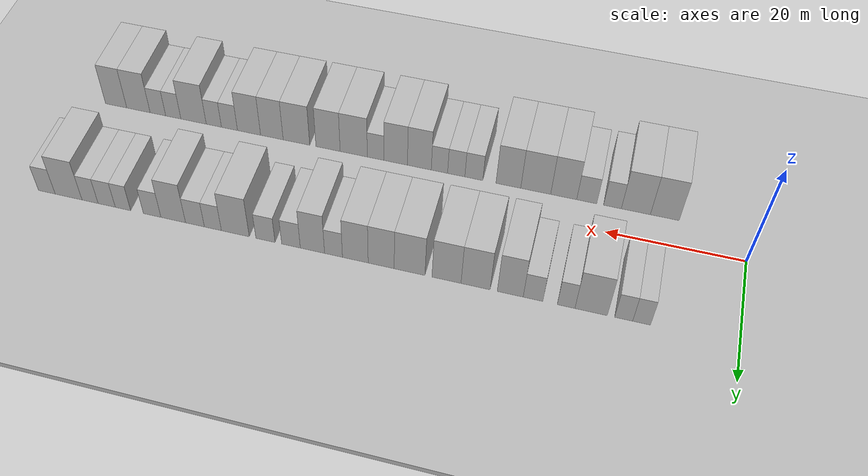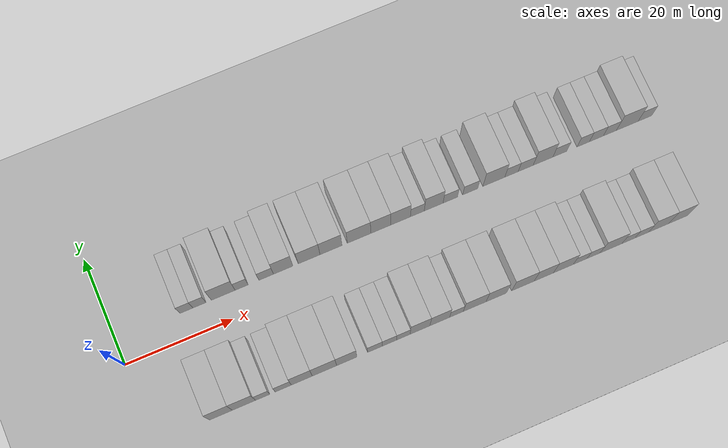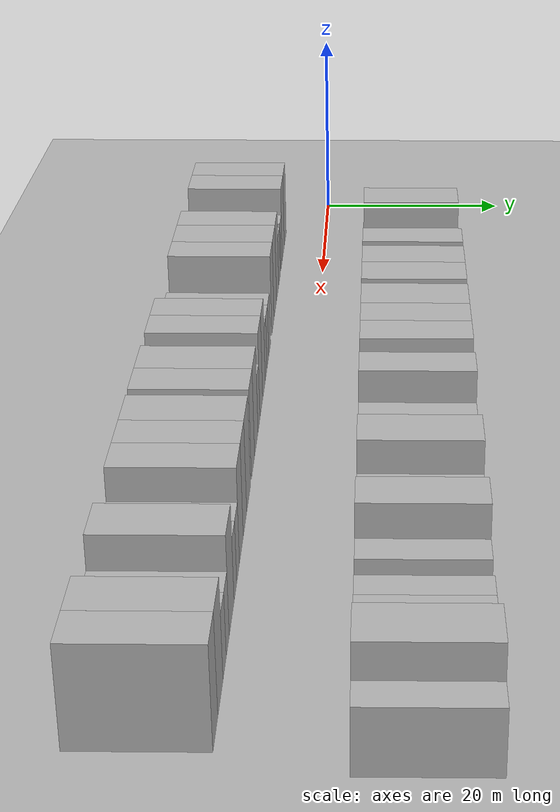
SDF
<sdf version="1.6">
 <world name="default">
  <include><name>ground_plane_1</name><uri>model://HANNAS_ground_plane</uri></include>
  <include>
   <name>ground_plane_2</name>
   <uri>model://HANNAS_ground_plane</uri>
   <pose>100 0 0  0 0 0</pose>
  </include>
  <model name="building_1">
   <static>1</static>
   <pose>13.2009 9.5000 0 0.000000 0.000000 1.570796</pose>
   <link name="link">
    <pose>0 0 3.00 0 0 0</pose>
    <collision name="collision"><geometry><box><size>10.0000 2.4018 6.0000</size></box></geometry></collision>
    <visual name="visual">
     <cast_shadows>0</cast_shadows>
     <geometry><box><size>10.0000 2.4018 6.0000</size></box></geometry>
     <material>
      <script>
       <uri>model://HANNAS_wall/materials/scripts</uri>
       <uri>model://HANNAS_wall/materials/textures</uri>
       <name>vrc/HANNAS_wall</name>
      </script>
     </material>
    </visual>
   </link>
  </model>
  <model name="building_2">
   <static>1</static>
   <pose>15.6214 9.5000 0 0.000000 0.000000 1.570796</pose>
   <link name="link">
    <pose>0 0 3.00 0 0 0</pose>
    <collision name="collision"><geometry><box><size>10.0000 2.4392 6.0000</size></box></geometry></collision>
    <visual name="visual">
     <cast_shadows>0</cast_shadows>
     <geometry><box><size>10.0000 2.4392 6.0000</size></box></geometry>
     <material>
      <script>
       <uri>model://HANNAS_wall/materials/scripts</uri>
       <uri>model://HANNAS_wall/materials/textures</uri>
       <name>vrc/HANNAS_wall</name>
      </script>
     </material>
    </visual>
   </link>
  </model>
  <model name="building_3">
   <static>1</static>
   <pose>20.0575 9.5000 0 0.000000 0.000000 1.570796</pose>
   <link name="link">
    <pose>0 0 4.50 0 0 0</pose>
    <collision name="collision"><geometry><box><size>10.0000 4.4329 9.0000</size></box></geometry></collision>
    <visual name="visual">
     <cast_shadows>0</cast_shadows>
     <geometry><box><size>10.0000 4.4329 9.0000</size></box></geometry>
     <material>
      <script>
       <uri>model://HANNAS_wall/materials/scripts</uri>
       <uri>model://HANNAS_wall/materials/textures</uri>
       <name>vrc/HANNAS_wall</name>
      </script>
     </material>
    </visual>
   </link>
  </model>
  <model name="building_4">
   <static>1</static>
   <pose>23.4861 9.5000 0 0.000000 0.000000 1.570796</pose>
   <link name="link">
    <pose>0 0 3.00 0 0 0</pose>
    <collision name="collision"><geometry><box><size>10.0000 2.4244 6.0000</size></box></geometry></collision>
    <visual name="visual">
     <cast_shadows>0</cast_shadows>
     <geometry><box><size>10.0000 2.4244 6.0000</size></box></geometry>
     <material>
      <script>
       <uri>model://HANNAS_wall/materials/scripts</uri>
       <uri>model://HANNAS_wall/materials/textures</uri>
       <name>vrc/HANNAS_wall</name>
      </script>
     </material>
    </visual>
   </link>
  </model>
  <model name="building_5">
   <static>1</static>
   <pose>28.0650 9.5000 0 0.000000 0.000000 1.570796</pose>
   <link name="link">
    <pose>0 0 3.00 0 0 0</pose>
    <collision name="collision"><geometry><box><size>10.0000 2.7334 6.0000</size></box></geometry></collision>
    <visual name="visual">
     <cast_shadows>0</cast_shadows>
     <geometry><box><size>10.0000 2.7334 6.0000</size></box></geometry>
     <material>
      <script>
       <uri>model://HANNAS_wall/materials/scripts</uri>
       <uri>model://HANNAS_wall/materials/textures</uri>
       <name>vrc/HANNAS_wall</name>
      </script>
     </material>
    </visual>
   </link>
  </model>
  <model name="building_6">
   <static>1</static>
   <pose>31.2534 9.5000 0 0.000000 0.000000 1.570796</pose>
   <link name="link">
    <pose>0 0 4.50 0 0 0</pose>
    <collision name="collision"><geometry><box><size>10.0000 3.6433 9.0000</size></box></geometry></collision>
    <visual name="visual">
     <cast_shadows>0</cast_shadows>
     <geometry><box><size>10.0000 3.6433 9.0000</size></box></geometry>
     <material>
      <script>
       <uri>model://HANNAS_wall/materials/scripts</uri>
       <uri>model://HANNAS_wall/materials/textures</uri>
       <name>vrc/HANNAS_wall</name>
      </script>
     </material>
    </visual>
   </link>
  </model>
  <model name="building_7">
   <static>1</static>
   <pose>36.1332 9.5000 0 0.000000 0.000000 1.570796</pose>
   <link name="link">
    <pose>0 0 4.50 0 0 0</pose>
    <collision name="collision"><geometry><box><size>10.0000 4.1164 9.0000</size></box></geometry></collision>
    <visual name="visual">
     <cast_shadows>0</cast_shadows>
     <geometry><box><size>10.0000 4.1164 9.0000</size></box></geometry>
     <material>
      <script>
       <uri>model://HANNAS_wall/materials/scripts</uri>
       <uri>model://HANNAS_wall/materials/textures</uri>
       <name>vrc/HANNAS_wall</name>
      </script>
     </material>
    </visual>
   </link>
  </model>
  <model name="building_8">
   <static>1</static>
   <pose>40.2678 9.5000 0 0.000000 0.000000 1.570796</pose>
   <link name="link">
    <pose>0 0 4.50 0 0 0</pose>
    <collision name="collision"><geometry><box><size>10.0000 4.1528 9.0000</size></box></geometry></collision>
    <visual name="visual">
     <cast_shadows>0</cast_shadows>
     <geometry><box><size>10.0000 4.1528 9.0000</size></box></geometry>
     <material>
      <script>
       <uri>model://HANNAS_wall/materials/scripts</uri>
       <uri>model://HANNAS_wall/materials/textures</uri>
       <name>vrc/HANNAS_wall</name>
      </script>
     </material>
    </visual>
   </link>
  </model>
  <model name="building_9">
   <static>1</static>
   <pose>45.5697 9.5000 0 0.000000 0.000000 1.570796</pose>
   <link name="link">
    <pose>0 0 4.50 0 0 0</pose>
    <collision name="collision"><geometry><box><size>10.0000 4.4511 9.0000</size></box></geometry></collision>
    <visual name="visual">
     <cast_shadows>0</cast_shadows>
     <geometry><box><size>10.0000 4.4511 9.0000</size></box></geometry>
     <material>
      <script>
       <uri>model://HANNAS_wall/materials/scripts</uri>
       <uri>model://HANNAS_wall/materials/textures</uri>
       <name>vrc/HANNAS_wall</name>
      </script>
     </material>
    </visual>
   </link>
  </model>
  <model name="building_10">
   <static>1</static>
   <pose>49.6884 9.5000 0 0.000000 0.000000 1.570796</pose>
   <link name="link">
    <pose>0 0 4.50 0 0 0</pose>
    <collision name="collision"><geometry><box><size>10.0000 3.7864 9.0000</size></box></geometry></collision>
    <visual name="visual">
     <cast_shadows>0</cast_shadows>
     <geometry><box><size>10.0000 3.7864 9.0000</size></box></geometry>
     <material>
      <script>
       <uri>model://HANNAS_wall/materials/scripts</uri>
       <uri>model://HANNAS_wall/materials/textures</uri>
       <name>vrc/HANNAS_wall</name>
      </script>
     </material>
    </visual>
   </link>
  </model>
  <model name="building_11">
   <static>1</static>
   <pose>53.4665 9.5000 0 0.000000 0.000000 1.570796</pose>
   <link name="link">
    <pose>0 0 4.50 0 0 0</pose>
    <collision name="collision"><geometry><box><size>10.0000 3.7699 9.0000</size></box></geometry></collision>
    <visual name="visual">
     <cast_shadows>0</cast_shadows>
     <geometry><box><size>10.0000 3.7699 9.0000</size></box></geometry>
     <material>
      <script>
       <uri>model://HANNAS_wall/materials/scripts</uri>
       <uri>model://HANNAS_wall/materials/textures</uri>
       <name>vrc/HANNAS_wall</name>
      </script>
     </material>
    </visual>
   </link>
  </model>
  <model name="building_12">
   <static>1</static>
   <pose>56.6749 9.5000 0 0.000000 0.000000 1.570796</pose>
   <link name="link">
    <pose>0 0 3.00 0 0 0</pose>
    <collision name="collision"><geometry><box><size>10.0000 2.6469 6.0000</size></box></geometry></collision>
    <visual name="visual">
     <cast_shadows>0</cast_shadows>
     <geometry><box><size>10.0000 2.6469 6.0000</size></box></geometry>
     <material>
      <script>
       <uri>model://HANNAS_wall/materials/scripts</uri>
       <uri>model://HANNAS_wall/materials/textures</uri>
       <name>vrc/HANNAS_wall</name>
      </script>
     </material>
    </visual>
   </link>
  </model>
  <model name="building_13">
   <static>1</static>
   <pose>59.8021 9.5000 0 0.000000 0.000000 1.570796</pose>
   <link name="link">
    <pose>0 0 4.50 0 0 0</pose>
    <collision name="collision"><geometry><box><size>10.0000 3.6074 9.0000</size></box></geometry></collision>
    <visual name="visual">
     <cast_shadows>0</cast_shadows>
     <geometry><box><size>10.0000 3.6074 9.0000</size></box></geometry>
     <material>
      <script>
       <uri>model://HANNAS_wall/materials/scripts</uri>
       <uri>model://HANNAS_wall/materials/textures</uri>
       <name>vrc/HANNAS_wall</name>
      </script>
     </material>
    </visual>
   </link>
  </model>
  <model name="building_14">
   <static>1</static>
   <pose>62.9990 9.5000 0 0.000000 0.000000 1.570796</pose>
   <link name="link">
    <pose>0 0 3.00 0 0 0</pose>
    <collision name="collision"><geometry><box><size>10.0000 2.7863 6.0000</size></box></geometry></collision>
    <visual name="visual">
     <cast_shadows>0</cast_shadows>
     <geometry><box><size>10.0000 2.7863 6.0000</size></box></geometry>
     <material>
      <script>
       <uri>model://HANNAS_wall/materials/scripts</uri>
       <uri>model://HANNAS_wall/materials/textures</uri>
       <name>vrc/HANNAS_wall</name>
      </script>
     </material>
    </visual>
   </link>
  </model>
  <model name="building_15">
   <static>1</static>
   <pose>66.8401 9.5000 0 0.000000 0.000000 1.570796</pose>
   <link name="link">
    <pose>0 0 3.00 0 0 0</pose>
    <collision name="collision"><geometry><box><size>10.0000 2.8960 6.0000</size></box></geometry></collision>
    <visual name="visual">
     <cast_shadows>0</cast_shadows>
     <geometry><box><size>10.0000 2.8960 6.0000</size></box></geometry>
     <material>
      <script>
       <uri>model://HANNAS_wall/materials/scripts</uri>
       <uri>model://HANNAS_wall/materials/textures</uri>
       <name>vrc/HANNAS_wall</name>
      </script>
     </material>
    </visual>
   </link>
  </model>
  <model name="building_16">
   <static>1</static>
   <pose>71.4126 9.5000 0 0.000000 0.000000 1.570796</pose>
   <link name="link">
    <pose>0 0 4.50 0 0 0</pose>
    <collision name="collision"><geometry><box><size>10.0000 4.2489 9.0000</size></box></geometry></collision>
    <visual name="visual">
     <cast_shadows>0</cast_shadows>
     <geometry><box><size>10.0000 4.2489 9.0000</size></box></geometry>
     <material>
      <script>
       <uri>model://HANNAS_wall/materials/scripts</uri>
       <uri>model://HANNAS_wall/materials/textures</uri>
       <name>vrc/HANNAS_wall</name>
      </script>
     </material>
    </visual>
   </link>
  </model>
  <model name="building_17">
   <static>1</static>
   <pose>74.8411 9.5000 0 0.000000 0.000000 1.570796</pose>
   <link name="link">
    <pose>0 0 3.00 0 0 0</pose>
    <collision name="collision"><geometry><box><size>10.0000 2.6082 6.0000</size></box></geometry></collision>
    <visual name="visual">
     <cast_shadows>0</cast_shadows>
     <geometry><box><size>10.0000 2.6082 6.0000</size></box></geometry>
     <material>
      <script>
       <uri>model://HANNAS_wall/materials/scripts</uri>
       <uri>model://HANNAS_wall/materials/textures</uri>
       <name>vrc/HANNAS_wall</name>
      </script>
     </material>
    </visual>
   </link>
  </model>
  <model name="building_18">
   <static>1</static>
   <pose>77.6003 9.5000 0 0.000000 0.000000 1.570796</pose>
   <link name="link">
    <pose>0 0 3.00 0 0 0</pose>
    <collision name="collision"><geometry><box><size>10.0000 2.9102 6.0000</size></box></geometry></collision>
    <visual name="visual">
     <cast_shadows>0</cast_shadows>
     <geometry><box><size>10.0000 2.9102 6.0000</size></box></geometry>
     <material>
      <script>
       <uri>model://HANNAS_wall/materials/scripts</uri>
       <uri>model://HANNAS_wall/materials/textures</uri>
       <name>vrc/HANNAS_wall</name>
      </script>
     </material>
    </visual>
   </link>
  </model>
  <model name="building_19">
   <static>1</static>
   <pose>80.9687 9.5000 0 0.000000 0.000000 1.570796</pose>
   <link name="link">
    <pose>0 0 4.50 0 0 0</pose>
    <collision name="collision"><geometry><box><size>10.0000 3.8265 9.0000</size></box></geometry></collision>
    <visual name="visual">
     <cast_shadows>0</cast_shadows>
     <geometry><box><size>10.0000 3.8265 9.0000</size></box></geometry>
     <material>
      <script>
       <uri>model://HANNAS_wall/materials/scripts</uri>
       <uri>model://HANNAS_wall/materials/textures</uri>
       <name>vrc/HANNAS_wall</name>
      </script>
     </material>
    </visual>
   </link>
  </model>
  <model name="building_20">
   <static>1</static>
   <pose>84.2531 9.5000 0 0.000000 0.000000 1.570796</pose>
   <link name="link">
    <pose>0 0 3.00 0 0 0</pose>
    <collision name="collision"><geometry><box><size>10.0000 2.7424 6.0000</size></box></geometry></collision>
    <visual name="visual">
     <cast_shadows>0</cast_shadows>
     <geometry><box><size>10.0000 2.7424 6.0000</size></box></geometry>
     <material>
      <script>
       <uri>model://HANNAS_wall/materials/scripts</uri>
       <uri>model://HANNAS_wall/materials/textures</uri>
       <name>vrc/HANNAS_wall</name>
      </script>
     </material>
    </visual>
   </link>
  </model>
  <model name="building_21">
   <static>1</static>
   <pose>88.8378 9.5000 0 0.000000 0.000000 1.570796</pose>
   <link name="link">
    <pose>0 0 3.00 0 0 0</pose>
    <collision name="collision"><geometry><box><size>10.0000 2.4270 6.0000</size></box></geometry></collision>
    <visual name="visual">
     <cast_shadows>0</cast_shadows>
     <geometry><box><size>10.0000 2.4270 6.0000</size></box></geometry>
     <material>
      <script>
       <uri>model://HANNAS_wall/materials/scripts</uri>
       <uri>model://HANNAS_wall/materials/textures</uri>
       <name>vrc/HANNAS_wall</name>
      </script>
     </material>
    </visual>
   </link>
  </model>
  <model name="building_22">
   <static>1</static>
   <pose>91.4158 9.5000 0 0.000000 0.000000 1.570796</pose>
   <link name="link">
    <pose>0 0 3.00 0 0 0</pose>
    <collision name="collision"><geometry><box><size>10.0000 2.7290 6.0000</size></box></geometry></collision>
    <visual name="visual">
     <cast_shadows>0</cast_shadows>
     <geometry><box><size>10.0000 2.7290 6.0000</size></box></geometry>
     <material>
      <script>
       <uri>model://HANNAS_wall/materials/scripts</uri>
       <uri>model://HANNAS_wall/materials/textures</uri>
       <name>vrc/HANNAS_wall</name>
      </script>
     </material>
    </visual>
   </link>
  </model>
  <model name="building_23">
   <static>1</static>
   <pose>94.0646 9.5000 0 0.000000 0.000000 1.570796</pose>
   <link name="link">
    <pose>0 0 3.00 0 0 0</pose>
    <collision name="collision"><geometry><box><size>10.0000 2.5685 6.0000</size></box></geometry></collision>
    <visual name="visual">
     <cast_shadows>0</cast_shadows>
     <geometry><box><size>10.0000 2.5685 6.0000</size></box></geometry>
     <material>
      <script>
       <uri>model://HANNAS_wall/materials/scripts</uri>
       <uri>model://HANNAS_wall/materials/textures</uri>
       <name>vrc/HANNAS_wall</name>
      </script>
     </material>
    </visual>
   </link>
  </model>
  <model name="building_24">
   <static>1</static>
   <pose>97.5057 9.5000 0 0.000000 0.000000 1.570796</pose>
   <link name="link">
    <pose>0 0 4.50 0 0 0</pose>
    <collision name="collision"><geometry><box><size>10.0000 4.3137 9.0000</size></box></geometry></collision>
    <visual name="visual">
     <cast_shadows>0</cast_shadows>
     <geometry><box><size>10.0000 4.3137 9.0000</size></box></geometry>
     <material>
      <script>
       <uri>model://HANNAS_wall/materials/scripts</uri>
       <uri>model://HANNAS_wall/materials/textures</uri>
       <name>vrc/HANNAS_wall</name>
      </script>
     </material>
    </visual>
   </link>
  </model>
  <model name="building_25">
   <static>1</static>
   <pose>101.0171 9.5000 0 0.000000 0.000000 1.570796</pose>
   <link name="link">
    <pose>0 0 3.00 0 0 0</pose>
    <collision name="collision"><geometry><box><size>10.0000 2.7090 6.0000</size></box></geometry></collision>
    <visual name="visual">
     <cast_shadows>0</cast_shadows>
     <geometry><box><size>10.0000 2.7090 6.0000</size></box></geometry>
     <material>
      <script>
       <uri>model://HANNAS_wall/materials/scripts</uri>
       <uri>model://HANNAS_wall/materials/textures</uri>
       <name>vrc/HANNAS_wall</name>
      </script>
     </material>
    </visual>
   </link>
  </model>
  <model name="building_49">
   <static>1</static>
   <pose>12.0807 -9.5000 0 0.000000 0.000000 1.570796</pose>
   <link name="link">
    <pose>0 0 4.50 0 0 0</pose>
    <collision name="collision"><geometry><box><size>10.0000 4.1614 9.0000</size></box></geometry></collision>
    <visual name="visual">
     <cast_shadows>0</cast_shadows>
     <geometry><box><size>10.0000 4.1614 9.0000</size></box></geometry>
     <material>
      <script>
       <uri>model://HANNAS_wall/materials/scripts</uri>
       <uri>model://HANNAS_wall/materials/textures</uri>
       <name>vrc/HANNAS_wall</name>
      </script>
     </material>
    </visual>
   </link>
  </model>
  <model name="building_50">
   <static>1</static>
   <pose>16.2794 -9.5000 0 0.000000 0.000000 1.570796</pose>
   <link name="link">
    <pose>0 0 4.50 0 0 0</pose>
    <collision name="collision"><geometry><box><size>10.0000 4.2360 9.0000</size></box></geometry></collision>
    <visual name="visual">
     <cast_shadows>0</cast_shadows>
     <geometry><box><size>10.0000 4.2360 9.0000</size></box></geometry>
     <material>
      <script>
       <uri>model://HANNAS_wall/materials/scripts</uri>
       <uri>model://HANNAS_wall/materials/textures</uri>
       <name>vrc/HANNAS_wall</name>
      </script>
     </material>
    </visual>
   </link>
  </model>
  <model name="building_51">
   <static>1</static>
   <pose>19.6999 -9.5000 0 0.000000 0.000000 1.570796</pose>
   <link name="link">
    <pose>0 0 3.00 0 0 0</pose>
    <collision name="collision"><geometry><box><size>10.0000 2.6049 6.0000</size></box></geometry></collision>
    <visual name="visual">
     <cast_shadows>0</cast_shadows>
     <geometry><box><size>10.0000 2.6049 6.0000</size></box></geometry>
     <material>
      <script>
       <uri>model://HANNAS_wall/materials/scripts</uri>
       <uri>model://HANNAS_wall/materials/textures</uri>
       <name>vrc/HANNAS_wall</name>
      </script>
     </material>
    </visual>
   </link>
  </model>
  <model name="building_52">
   <static>1</static>
   <pose>23.4866 -9.5000 0 0.000000 0.000000 1.570796</pose>
   <link name="link">
    <pose>0 0 3.00 0 0 0</pose>
    <collision name="collision"><geometry><box><size>10.0000 2.9686 6.0000</size></box></geometry></collision>
    <visual name="visual">
     <cast_shadows>0</cast_shadows>
     <geometry><box><size>10.0000 2.9686 6.0000</size></box></geometry>
     <material>
      <script>
       <uri>model://HANNAS_wall/materials/scripts</uri>
       <uri>model://HANNAS_wall/materials/textures</uri>
       <name>vrc/HANNAS_wall</name>
      </script>
     </material>
    </visual>
   </link>
  </model>
  <model name="building_53">
   <static>1</static>
   <pose>26.9066 -9.5000 0 0.000000 0.000000 1.570796</pose>
   <link name="link">
    <pose>0 0 4.50 0 0 0</pose>
    <collision name="collision"><geometry><box><size>10.0000 3.8714 9.0000</size></box></geometry></collision>
    <visual name="visual">
     <cast_shadows>0</cast_shadows>
     <geometry><box><size>10.0000 3.8714 9.0000</size></box></geometry>
     <material>
      <script>
       <uri>model://HANNAS_wall/materials/scripts</uri>
       <uri>model://HANNAS_wall/materials/textures</uri>
       <name>vrc/HANNAS_wall</name>
      </script>
     </material>
    </visual>
   </link>
  </model>
  <model name="building_54">
   <static>1</static>
   <pose>31.0897 -9.5000 0 0.000000 0.000000 1.570796</pose>
   <link name="link">
    <pose>0 0 4.50 0 0 0</pose>
    <collision name="collision"><geometry><box><size>10.0000 4.4949 9.0000</size></box></geometry></collision>
    <visual name="visual">
     <cast_shadows>0</cast_shadows>
     <geometry><box><size>10.0000 4.4949 9.0000</size></box></geometry>
     <material>
      <script>
       <uri>model://HANNAS_wall/materials/scripts</uri>
       <uri>model://HANNAS_wall/materials/textures</uri>
       <name>vrc/HANNAS_wall</name>
      </script>
     </material>
    </visual>
   </link>
  </model>
  <model name="building_55">
   <static>1</static>
   <pose>35.2125 -9.5000 0 0.000000 0.000000 1.570796</pose>
   <link name="link">
    <pose>0 0 4.50 0 0 0</pose>
    <collision name="collision"><geometry><box><size>10.0000 3.7507 9.0000</size></box></geometry></collision>
    <visual name="visual">
     <cast_shadows>0</cast_shadows>
     <geometry><box><size>10.0000 3.7507 9.0000</size></box></geometry>
     <material>
      <script>
       <uri>model://HANNAS_wall/materials/scripts</uri>
       <uri>model://HANNAS_wall/materials/textures</uri>
       <name>vrc/HANNAS_wall</name>
      </script>
     </material>
    </visual>
   </link>
  </model>
  <model name="building_56">
   <static>1</static>
   <pose>40.4596 -9.5000 0 0.000000 0.000000 1.570796</pose>
   <link name="link">
    <pose>0 0 3.00 0 0 0</pose>
    <collision name="collision"><geometry><box><size>10.0000 2.7436 6.0000</size></box></geometry></collision>
    <visual name="visual">
     <cast_shadows>0</cast_shadows>
     <geometry><box><size>10.0000 2.7436 6.0000</size></box></geometry>
     <material>
      <script>
       <uri>model://HANNAS_wall/materials/scripts</uri>
       <uri>model://HANNAS_wall/materials/textures</uri>
       <name>vrc/HANNAS_wall</name>
      </script>
     </material>
    </visual>
   </link>
  </model>
  <model name="building_57">
   <static>1</static>
   <pose>43.1601 -9.5000 0 0.000000 0.000000 1.570796</pose>
   <link name="link">
    <pose>0 0 3.00 0 0 0</pose>
    <collision name="collision"><geometry><box><size>10.0000 2.6574 6.0000</size></box></geometry></collision>
    <visual name="visual">
     <cast_shadows>0</cast_shadows>
     <geometry><box><size>10.0000 2.6574 6.0000</size></box></geometry>
     <material>
      <script>
       <uri>model://HANNAS_wall/materials/scripts</uri>
       <uri>model://HANNAS_wall/materials/textures</uri>
       <name>vrc/HANNAS_wall</name>
      </script>
     </material>
    </visual>
   </link>
  </model>
  <model name="building_58">
   <static>1</static>
   <pose>45.7511 -9.5000 0 0.000000 0.000000 1.570796</pose>
   <link name="link">
    <pose>0 0 3.00 0 0 0</pose>
    <collision name="collision"><geometry><box><size>10.0000 2.5245 6.0000</size></box></geometry></collision>
    <visual name="visual">
     <cast_shadows>0</cast_shadows>
     <geometry><box><size>10.0000 2.5245 6.0000</size></box></geometry>
     <material>
      <script>
       <uri>model://HANNAS_wall/materials/scripts</uri>
       <uri>model://HANNAS_wall/materials/textures</uri>
       <name>vrc/HANNAS_wall</name>
      </script>
     </material>
    </visual>
   </link>
  </model>
  <model name="building_59">
   <static>1</static>
   <pose>48.8729 -9.5000 0 0.000000 0.000000 1.570796</pose>
   <link name="link">
    <pose>0 0 4.50 0 0 0</pose>
    <collision name="collision"><geometry><box><size>10.0000 3.7191 9.0000</size></box></geometry></collision>
    <visual name="visual">
     <cast_shadows>0</cast_shadows>
     <geometry><box><size>10.0000 3.7191 9.0000</size></box></geometry>
     <material>
      <script>
       <uri>model://HANNAS_wall/materials/scripts</uri>
       <uri>model://HANNAS_wall/materials/textures</uri>
       <name>vrc/HANNAS_wall</name>
      </script>
     </material>
    </visual>
   </link>
  </model>
  <model name="building_60">
   <static>1</static>
   <pose>52.5866 -9.5000 0 0.000000 0.000000 1.570796</pose>
   <link name="link">
    <pose>0 0 4.50 0 0 0</pose>
    <collision name="collision"><geometry><box><size>10.0000 3.7082 9.0000</size></box></geometry></collision>
    <visual name="visual">
     <cast_shadows>0</cast_shadows>
     <geometry><box><size>10.0000 3.7082 9.0000</size></box></geometry>
     <material>
      <script>
       <uri>model://HANNAS_wall/materials/scripts</uri>
       <uri>model://HANNAS_wall/materials/textures</uri>
       <name>vrc/HANNAS_wall</name>
      </script>
     </material>
    </visual>
   </link>
  </model>
  <model name="building_61">
   <static>1</static>
   <pose>55.7286 -9.5000 0 0.000000 0.000000 1.570796</pose>
   <link name="link">
    <pose>0 0 3.00 0 0 0</pose>
    <collision name="collision"><geometry><box><size>10.0000 2.5757 6.0000</size></box></geometry></collision>
    <visual name="visual">
     <cast_shadows>0</cast_shadows>
     <geometry><box><size>10.0000 2.5757 6.0000</size></box></geometry>
     <material>
      <script>
       <uri>model://HANNAS_wall/materials/scripts</uri>
       <uri>model://HANNAS_wall/materials/textures</uri>
       <name>vrc/HANNAS_wall</name>
      </script>
     </material>
    </visual>
   </link>
  </model>
  <model name="building_62">
   <static>1</static>
   <pose>59.1694 -9.5000 0 0.000000 0.000000 1.570796</pose>
   <link name="link">
    <pose>0 0 4.50 0 0 0</pose>
    <collision name="collision"><geometry><box><size>10.0000 4.3059 9.0000</size></box></geometry></collision>
    <visual name="visual">
     <cast_shadows>0</cast_shadows>
     <geometry><box><size>10.0000 4.3059 9.0000</size></box></geometry>
     <material>
      <script>
       <uri>model://HANNAS_wall/materials/scripts</uri>
       <uri>model://HANNAS_wall/materials/textures</uri>
       <name>vrc/HANNAS_wall</name>
      </script>
     </material>
    </visual>
   </link>
  </model>
  <model name="building_63">
   <static>1</static>
   <pose>63.2558 -9.5000 0 0.000000 0.000000 1.570796</pose>
   <link name="link">
    <pose>0 0 4.50 0 0 0</pose>
    <collision name="collision"><geometry><box><size>10.0000 3.8670 9.0000</size></box></geometry></collision>
    <visual name="visual">
     <cast_shadows>0</cast_shadows>
     <geometry><box><size>10.0000 3.8670 9.0000</size></box></geometry>
     <material>
      <script>
       <uri>model://HANNAS_wall/materials/scripts</uri>
       <uri>model://HANNAS_wall/materials/textures</uri>
       <name>vrc/HANNAS_wall</name>
      </script>
     </material>
    </visual>
   </link>
  </model>
  <model name="building_64">
   <static>1</static>
   <pose>68.3326 -9.5000 0 0.000000 0.000000 1.570796</pose>
   <link name="link">
    <pose>0 0 4.50 0 0 0</pose>
    <collision name="collision"><geometry><box><size>10.0000 4.2867 9.0000</size></box></geometry></collision>
    <visual name="visual">
     <cast_shadows>0</cast_shadows>
     <geometry><box><size>10.0000 4.2867 9.0000</size></box></geometry>
     <material>
      <script>
       <uri>model://HANNAS_wall/materials/scripts</uri>
       <uri>model://HANNAS_wall/materials/textures</uri>
       <name>vrc/HANNAS_wall</name>
      </script>
     </material>
    </visual>
   </link>
  </model>
  <model name="building_65">
   <static>1</static>
   <pose>72.3126 -9.5000 0 0.000000 0.000000 1.570796</pose>
   <link name="link">
    <pose>0 0 4.50 0 0 0</pose>
    <collision name="collision"><geometry><box><size>10.0000 3.6733 9.0000</size></box></geometry></collision>
    <visual name="visual">
     <cast_shadows>0</cast_shadows>
     <geometry><box><size>10.0000 3.6733 9.0000</size></box></geometry>
     <material>
      <script>
       <uri>model://HANNAS_wall/materials/scripts</uri>
       <uri>model://HANNAS_wall/materials/textures</uri>
       <name>vrc/HANNAS_wall</name>
      </script>
     </material>
    </visual>
   </link>
  </model>
  <model name="building_66">
   <static>1</static>
   <pose>76.0422 -9.5000 0 0.000000 0.000000 1.570796</pose>
   <link name="link">
    <pose>0 0 4.50 0 0 0</pose>
    <collision name="collision"><geometry><box><size>10.0000 3.7859 9.0000</size></box></geometry></collision>
    <visual name="visual">
     <cast_shadows>0</cast_shadows>
     <geometry><box><size>10.0000 3.7859 9.0000</size></box></geometry>
     <material>
      <script>
       <uri>model://HANNAS_wall/materials/scripts</uri>
       <uri>model://HANNAS_wall/materials/textures</uri>
       <name>vrc/HANNAS_wall</name>
      </script>
     </material>
    </visual>
   </link>
  </model>
  <model name="building_67">
   <static>1</static>
   <pose>79.2590 -9.5000 0 0.000000 0.000000 1.570796</pose>
   <link name="link">
    <pose>0 0 3.00 0 0 0</pose>
    <collision name="collision"><geometry><box><size>10.0000 2.6479 6.0000</size></box></geometry></collision>
    <visual name="visual">
     <cast_shadows>0</cast_shadows>
     <geometry><box><size>10.0000 2.6479 6.0000</size></box></geometry>
     <material>
      <script>
       <uri>model://HANNAS_wall/materials/scripts</uri>
       <uri>model://HANNAS_wall/materials/textures</uri>
       <name>vrc/HANNAS_wall</name>
      </script>
     </material>
    </visual>
   </link>
  </model>
  <model name="building_68">
   <static>1</static>
   <pose>81.8412 -9.5000 0 0.000000 0.000000 1.570796</pose>
   <link name="link">
    <pose>0 0 3.00 0 0 0</pose>
    <collision name="collision"><geometry><box><size>10.0000 2.5165 6.0000</size></box></geometry></collision>
    <visual name="visual">
     <cast_shadows>0</cast_shadows>
     <geometry><box><size>10.0000 2.5165 6.0000</size></box></geometry>
     <material>
      <script>
       <uri>model://HANNAS_wall/materials/scripts</uri>
       <uri>model://HANNAS_wall/materials/textures</uri>
       <name>vrc/HANNAS_wall</name>
      </script>
     </material>
    </visual>
   </link>
  </model>
  <model name="building_69">
   <static>1</static>
   <pose>85.2153 -9.5000 0 0.000000 0.000000 1.570796</pose>
   <link name="link">
    <pose>0 0 4.50 0 0 0</pose>
    <collision name="collision"><geometry><box><size>10.0000 4.2315 9.0000</size></box></geometry></collision>
    <visual name="visual">
     <cast_shadows>0</cast_shadows>
     <geometry><box><size>10.0000 4.2315 9.0000</size></box></geometry>
     <material>
      <script>
       <uri>model://HANNAS_wall/materials/scripts</uri>
       <uri>model://HANNAS_wall/materials/textures</uri>
       <name>vrc/HANNAS_wall</name>
      </script>
     </material>
    </visual>
   </link>
  </model>
  <model name="building_70">
   <static>1</static>
   <pose>88.6059 -9.5000 0 0.000000 0.000000 1.570796</pose>
   <link name="link">
    <pose>0 0 3.00 0 0 0</pose>
    <collision name="collision"><geometry><box><size>10.0000 2.5498 6.0000</size></box></geometry></collision>
    <visual name="visual">
     <cast_shadows>0</cast_shadows>
     <geometry><box><size>10.0000 2.5498 6.0000</size></box></geometry>
     <material>
      <script>
       <uri>model://HANNAS_wall/materials/scripts</uri>
       <uri>model://HANNAS_wall/materials/textures</uri>
       <name>vrc/HANNAS_wall</name>
      </script>
     </material>
    </visual>
   </link>
  </model>
  <model name="building_71">
   <static>1</static>
   <pose>91.1911 -9.5000 0 0.000000 0.000000 1.570796</pose>
   <link name="link">
    <pose>0 0 3.00 0 0 0</pose>
    <collision name="collision"><geometry><box><size>10.0000 2.6206 6.0000</size></box></geometry></collision>
    <visual name="visual">
     <cast_shadows>0</cast_shadows>
     <geometry><box><size>10.0000 2.6206 6.0000</size></box></geometry>
     <material>
      <script>
       <uri>model://HANNAS_wall/materials/scripts</uri>
       <uri>model://HANNAS_wall/materials/textures</uri>
       <name>vrc/HANNAS_wall</name>
      </script>
     </material>
    </visual>
   </link>
  </model>
  <model name="building_72">
   <static>1</static>
   <pose>94.4870 -9.5000 0 0.000000 0.000000 1.570796</pose>
   <link name="link">
    <pose>0 0 4.50 0 0 0</pose>
    <collision name="collision"><geometry><box><size>10.0000 3.9713 9.0000</size></box></geometry></collision>
    <visual name="visual">
     <cast_shadows>0</cast_shadows>
     <geometry><box><size>10.0000 3.9713 9.0000</size></box></geometry>
     <material>
      <script>
       <uri>model://HANNAS_wall/materials/scripts</uri>
       <uri>model://HANNAS_wall/materials/textures</uri>
       <name>vrc/HANNAS_wall</name>
      </script>
     </material>
    </visual>
   </link>
  </model>
  <model name="building_73">
   <static>1</static>
   <pose>98.2809 -9.5000 0 0.000000 0.000000 1.570796</pose>
   <link name="link">
    <pose>0 0 4.50 0 0 0</pose>
    <collision name="collision"><geometry><box><size>10.0000 3.6163 9.0000</size></box></geometry></collision>
    <visual name="visual">
     <cast_shadows>0</cast_shadows>
     <geometry><box><size>10.0000 3.6163 9.0000</size></box></geometry>
     <material>
      <script>
       <uri>model://HANNAS_wall/materials/scripts</uri>
       <uri>model://HANNAS_wall/materials/textures</uri>
       <name>vrc/HANNAS_wall</name>
      </script>
     </material>
    </visual>
   </link>
  </model>
 </world>
</sdf>
